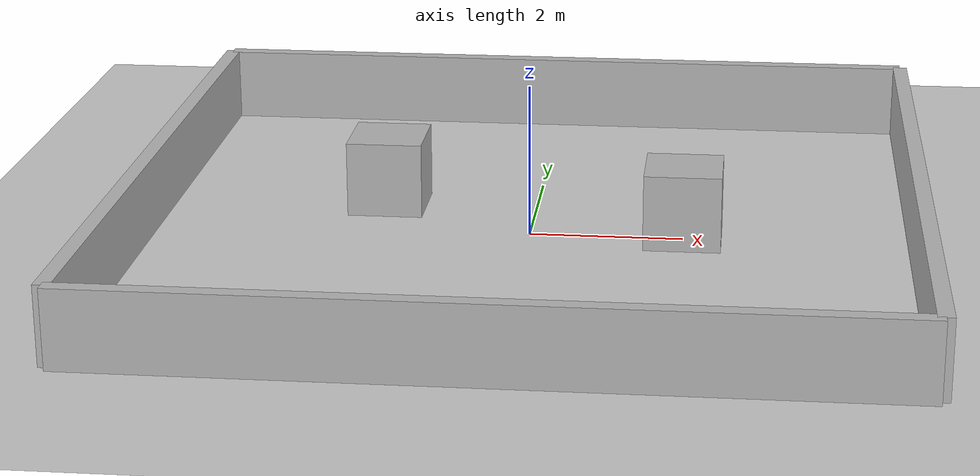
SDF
<?xml version="1.0" ?>
<sdf version="1.6">

<world name="warehouse">

  <include>
    <uri>model://ground_plane</uri>
  </include>

  <include>
    <uri>model://sun</uri>
  </include>

  <!-- ================= ROOM WALLS ================= -->
  <model name="wall_north">
    <static>true</static>
    <link name="link">
      <pose>0 5 0.5 0 0 0</pose>
      <collision name="collision">
        <geometry>
          <box><size>10 0.2 1</size></box>
        </geometry>
      </collision>
      <visual name="visual">
        <geometry>
          <box><size>10 0.2 1</size></box>
        </geometry>
      </visual>
    </link>
  </model>

  <model name="wall_south">
    <static>true</static>
    <link name="link">
      <pose>0 -5 0.5 0 0 0</pose>
      <collision name="collision">
        <geometry>
          <box><size>10 0.2 1</size></box>
        </geometry>
      </collision>
      <visual name="visual">
        <geometry>
          <box><size>10 0.2 1</size></box>
        </geometry>
      </visual>
    </link>
  </model>

  <model name="wall_east">
    <static>true</static>
    <link name="link">
      <pose>5 0 0.5 0 0 0</pose>
      <collision name="collision">
        <geometry>
          <box><size>0.2 10 1</size></box>
        </geometry>
      </collision>
      <visual name="visual">
        <geometry>
          <box><size>0.2 10 1</size></box>
        </geometry>
      </visual>
    </link>
  </model>

  <model name="wall_west">
    <static>true</static>
    <link name="link">
      <pose>-5 0 0.5 0 0 0</pose>
      <collision name="collision">
        <geometry>
          <box><size>0.2 10 1</size></box>
        </geometry>
      </collision>
      <visual name="visual">
        <geometry>
          <box><size>0.2 10 1</size></box>
        </geometry>
      </visual>
    </link>
  </model>

  <!-- Box obstacle 1 -->
  <model name="box1">
    <static>true</static>
    <link name="link">
      <pose>2 0 0.5 0 0 0</pose>
      <collision name="collision">
        <geometry>
          <box><size>1 1 1</size></box>
        </geometry>
      </collision>
      <visual name="visual">
        <geometry>
          <box><size>1 1 1</size></box>
        </geometry>
      </visual>
    </link>
  </model>

  <!-- Box obstacle 2 -->
  <model name="box2">
    <static>true</static>
    <link name="link">
      <pose>-2 1 0.5 0 0 0</pose>
      <collision name="collision">
        <geometry>
          <box><size>1 1 1</size></box>
        </geometry>
      </collision>
      <visual name="visual">
        <geometry>
          <box><size>1 1 1</size></box>
        </geometry>
      </visual>
    </link>
  </model>

</world>

</sdf>
